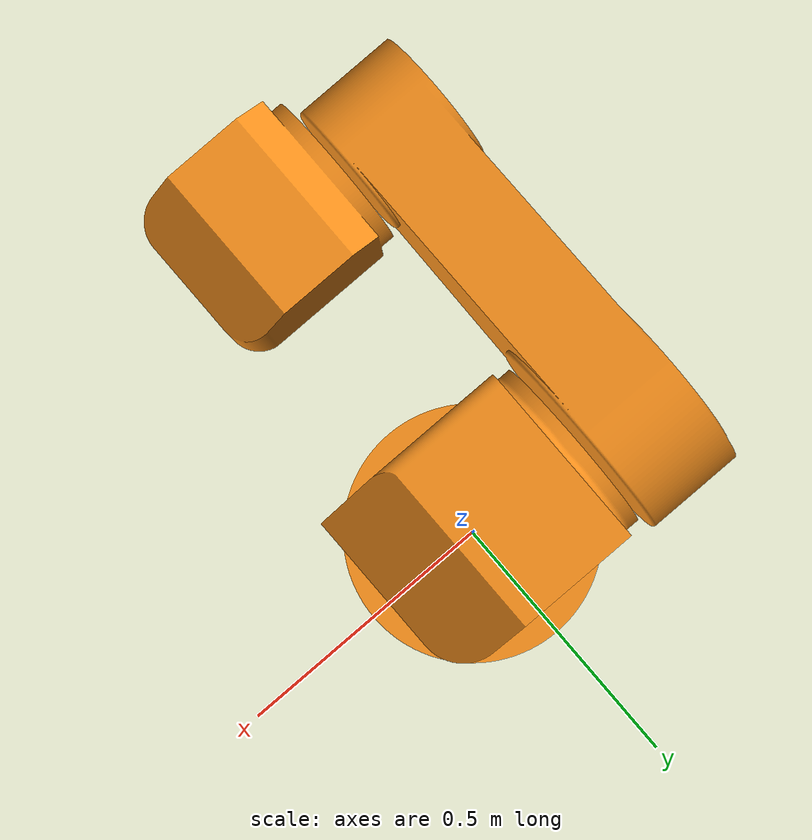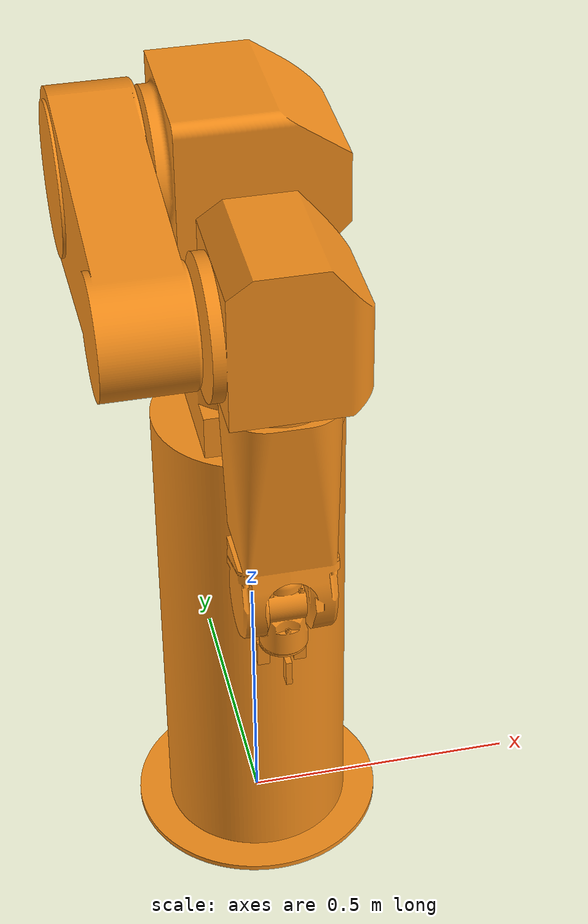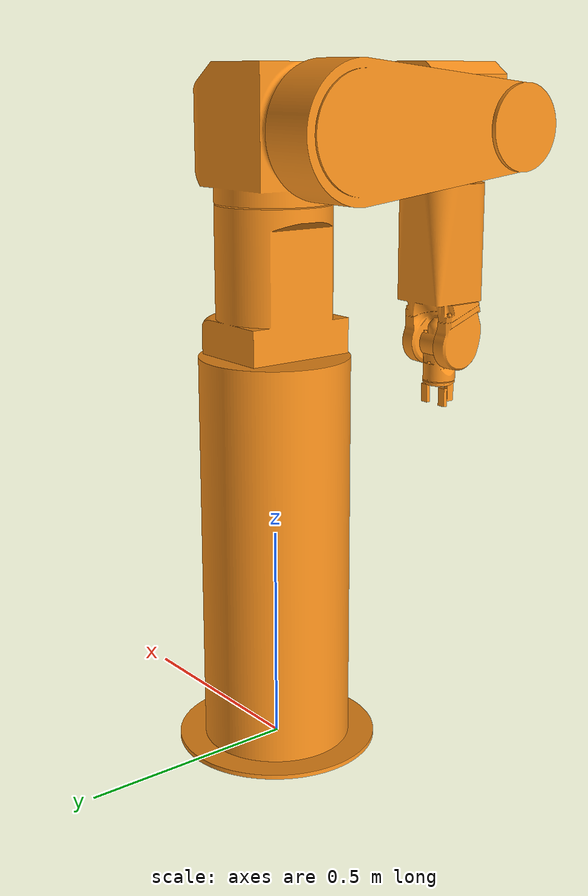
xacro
<?xml version="1.0"?>
<!-- Revolute-Revolute Manipulator -->
<robot name="rx90" xmlns:xacro="http://www.ros.org/wiki/xacro">

  <!-- Constants for robot dimensions -->

  <!-- Import all Gazebo-customization elements, including Gazebo colors -->
  <xacro:include filename="$(find rx90_description)/urdf/rx90.gazebo" />
  <!-- Import Rviz colors -->
  <xacro:include filename="$(find rx90_description)/urdf/materials.xacro" />

  <!-- Used for fixing robot to Gazebo 'base_link' -->
  <link name="world"/>

<!--BRAZOOOOOOOOOOOOOOOOOOOO-->

<!-- Joint 0 -->
   <link name="RX90_BARREL">
      <visual>
         <geometry>
            <mesh filename="package://rx90_description/meshes/stl/RX-90_BARREL.stl" scale="0.001 0.001 0.001" />
         </geometry>
          <origin rpy="${pi/2} 0 0" xyz= "0 0 0"/>
      </visual>
      <collision>
        <origin rpy="${pi/2} 0 0" xyz="0 0 0" />
            <geometry>
              <mesh filename="package://rx90_description/meshes/stl/RX-90_BARREL.stl" scale="0.001 0.001 0.001" />
            </geometry>
       </collision>
       <selfCollide>true</selfCollide>
	<inertial>
        <origin xyz="0 0 0" rpy="0 0 0" />
        <mass value="1" />
        <inertia
          ixx="1.0" ixy="0.0" ixz="0.0"
          iyy="1.0" iyz="0.0"
          izz="1.0" />
    </inertial>
   </link>
   <joint name="RX90_BARREL_JOINT" type="fixed">
      <parent link="world" />
      <child link="RX90_BARREL" />
      <origin rpy="0 0 0" xyz="0 0 0" />
   </joint>

    <link name="RX90_BASE">
       <visual>
	<origin rpy="${pi/2} 0 0" xyz="0 0 0" />
          <geometry>
             <mesh filename="package://rx90_description/meshes/stl/RX-90_BASE.stl" scale="0.001 0.001 0.001" />
          </geometry>
       </visual>
	<collision>
        <origin rpy="${pi/2} 0 0" xyz="0 0 0" />
            <geometry>
              <mesh filename="package://rx90_description/meshes/stl/RX-90_BASE.stl" scale="0.001 0.001 0.001" />
            </geometry>
       </collision>
       <selfCollide>true</selfCollide>
	<inertial>
        <mass value="23.085357"/>
          <origin xyz="0.007579 0.000017 0.180670" rpy="0.0 0.0 0.0"/>
          <inertia ixx="0.343576" ixy="-0.000062" ixz="-0.002079"
                                  iyy="0.336217"  iyz="-0.000014"
                                                  izz="0.334050"/>
    </inertial>
    </link>
    <joint name="RX90_BASE_JOINT" type="fixed">
       <parent link="RX90_BARREL" />
       <child link="RX90_BASE" />
       <origin rpy="0 0 0" xyz="0 0 1.005" />
    </joint>

    <link name="RX90_SHOULDER">
       <visual>
	<origin rpy="0 ${-pi/2} ${pi/2}" xyz="0.122 0 0" />
          <geometry>
             <mesh filename="package://rx90_description/meshes/stl/RX-90_SHOULDER.stl" scale="0.001 0.001 0.001" />
          </geometry>
       </visual>
	<collision>
        <origin rpy="0 ${-pi/2} ${pi/2}" xyz="0.122 0 0" />
            <geometry>
              <mesh filename="package://rx90_description/meshes/stl/RX-90_SHOULDER.stl" scale="0.001 0.001 0.001" />
            </geometry>
       </collision>
       <selfCollide>true</selfCollide>
	<inertial>
        <mass value="45.357763"/>
          <origin xyz="0.085479 -0.002547 -0.040488" rpy="0.0 0.0 0.0"/>
          <inertia ixx="0.839141" ixy="0.022637" ixz="0.162457"
                                  iyy="1.030146" iyz="0.027416"
                                                  izz="1.064698"/>
    </inertial>
    </link>
    <joint name="RX90_SHOULDER_JOINT" type="revolute">
    <limit effort="10000" lower="-2.7925" upper="2.7925" velocity="4.1189"/>
       <parent link="RX90_BASE" />
       <child link="RX90_SHOULDER" />
       <origin rpy="0 ${pi/2} 0" xyz="0 0 0.41" />
    </joint>

<link name="RX90_ARM">
       <visual>
	<origin rpy="0 0 ${pi/2}" xyz="0 0 0" />
          <geometry>
             <mesh filename="package://rx90_description/meshes/stl/RX-90_ARM.stl" scale="0.001 0.001 0.001" />
          </geometry>
       </visual>
	<collision>
        <origin rpy="0 0 ${pi/2}" xyz="0 0 0" />
            <geometry>
              <mesh filename="package://rx90_description/meshes/stl/RX-90_ARM.stl" scale="0.001 0.001 0.001" />
            </geometry>
       </collision>
       <selfCollide>true</selfCollide>
	<inertial>
        <mass value="51.266495"/>
          <origin xyz="-0.000002 0.264164 0.347704" rpy="0.0 0.0 0.0"/>
          <inertia ixx="5.272800" ixy="0.000010" ixz="0.000017"
                                  iyy="5.536809" iyz="-0.008261"
                                                  izz="0.486191"/>
    </inertial>
    </link>
    <joint name="RX90_ARM_JOINT" type="revolute">
    <limit effort="10000" lower="-0.82" upper="3.96" velocity="3.4906"/>
       <parent link="RX90_SHOULDER" />
       <child link="RX90_ARM" />
       <origin rpy="0 ${pi/2} ${pi/2}" xyz="0 0 -0.301" />
    </joint>

    <link name="RX90_ELBOW">
       <visual>
	<origin rpy="${-pi/2} ${-pi/2} ${-pi/2}" xyz="-0.021 0.14 0" />
          <geometry>
             <mesh filename="package://rx90_description/meshes/stl/RX-90_ELBOW.stl" scale="0.001 0.001 0.001" />
          </geometry>
       </visual>
	<collision>
        <origin rpy="${-pi/2} ${-pi/2} ${-pi/2}" xyz="-0.021 0.14 0" />
            <geometry>
              <mesh filename="package://rx90_description/meshes/stl/RX-90_ELBOW.stl" scale="0.001 0.001 0.001" />
            </geometry>
       </collision>
       <selfCollide>true</selfCollide>
	<inertial>
        <mass value="19.754401"/>
          <origin xyz="-0.000255 0.016478 -0.003819" rpy="0.0 0.0 0.0"/>
          <inertia ixx="0.249388" ixy="-0.004901" ixz="0.004825"
                                  iyy="0.211780"  iyz="0.000574"
                                                  izz="0.238488"/>
    </inertial>
    </link>
    <joint name="RX90_ELBOW_JOINT" type="revolute">
    <limit effort="10000" lower="-0.917" upper="4.057" velocity="4.9916"/>
       <parent link="RX90_ARM" />
       <child link="RX90_ELBOW" />
       <origin rpy="0 0 0" xyz="-0.255 0 -0.46" />
    </joint>

  <link name="RX90_FOREARM">
       <visual>
	<origin rpy="${pi} ${-pi/2} 0" xyz="0.355 0.1 -0.05" />
          <geometry>
             <mesh filename="package://rx90_description/meshes/stl/RX-90_FOREARM.stl" scale="0.001 0.001 0.001" />
          </geometry>
       </visual>
	<collision>
        <origin rpy="${pi} ${-pi/2} 0" xyz="0.355 0.1 -0.05" />
            <geometry>
              <mesh filename="package://rx90_description/meshes/stl/RX-90_FOREARM.stl" scale="0.001 0.001 0.001" />
            </geometry>
       </collision>
       <selfCollide>true</selfCollide>
	<inertial>
       <mass value="15.287896"/>
          <origin xyz="-0.015515 0.000164 0.340348" rpy="0.0 0.0 0.0"/>
          <inertia ixx="0.331593" ixy="0.000055" ixz="-0.010688"
                                  iyy="0.320895" iyz="0.000058"
                                                  izz="0.086557"/>
    </inertial>
    </link>
    <joint name="RX90_FOREARM_JOINT" type="revolute">
    <limit effort="10000" lower="-4.712" upper="4.712" velocity="6.9987"/>
       <parent link="RX90_ELBOW" />
       <child link="RX90_FOREARM" />
       <origin rpy="0 0 ${-pi/2}" xyz="0 0 0" />
    </joint>

      <link name="RX90_WRIST">
       <visual>
	<origin rpy="${pi/2} 0 ${-pi/2}" xyz="-0.007 0 -0.01" />
          <geometry>
             <mesh filename="package://rx90_description/meshes/stl/RX-90_WRIST.stl" scale="0.001 0.001 0.001" />
          </geometry>
       </visual>
	<collision>
        <origin rpy="${pi/2} 0 ${-pi/2}" xyz="-0.007 0 -0.01" />
            <geometry>
              <mesh filename="package://rx90_description/meshes/stl/RX-90_WRIST.stl" scale="0.001 0.001 0.001" />
            </geometry>
       </collision>
       <selfCollide>true</selfCollide>
	<inertial>
        <mass value="0.548088"/>
          <origin xyz="0.000000 -0.000347 0.023671" rpy="0.0 0.0 0.0"/>
          <inertia ixx="0.000876" ixy="0.000000" ixz="0.000000"
                                  iyy="0.000889" iyz="0.000005"
                                                  izz="0.000412"/>
    </inertial>
    </link>
    <joint name="RX90_WRIST_JOINT" type="revolute">
    <limit effort="10000" lower="-2" upper="1.8325" velocity="5.585"/>
       <parent link="RX90_FOREARM" />
       <child link="RX90_WRIST" />
       <origin rpy="0 0 ${pi/2}" xyz="0.52 0 0" />
    </joint>

          <link name="RX90_FLANGE">
       <visual>
	<origin rpy="0 ${pi/2} 0" xyz="0 0 0" />
          <geometry>
             <mesh filename="package://rx90_description/meshes/stl/RX-90_FLANGE.stl" scale="0.001 0.001 0.001" />
          </geometry>
       </visual>
	<collision>
        <origin rpy="0 ${pi/2} 0" xyz="0 0 -0.009" />
            <geometry>
              <mesh filename="package://rx90_description/meshes/stl/RX-90_FLANGE.stl" scale="0.001 0.001 0.001" />
            </geometry>
       </collision>
       <selfCollide>true</selfCollide>
	<inertial>
        <origin xyz="0 0 0" rpy="0 0 0" />
         <mass value="0.038484"/>
          <origin xyz="-0.000245 0.000000 -0.007626" rpy="0.0 0.0 0.0"/>
          <inertia ixx="0.000011" ixy="0.000000" ixz="0.000000"
                                  iyy="0.000011" iyz="0.000000"
                                                  izz="0.000021"/>
    </inertial>
    </link>
    <joint name="RX90_FLANGE_JOINT" type="revolute">
    <limit effort="10000" lower="-4.712" upper="4.712" velocity="10.122"/>
       <parent link="RX90_WRIST" />
       <child link="RX90_FLANGE" />
       <origin rpy="0 0 ${-pi/2}" xyz="-0.006 -0.1015 -0.009" />
    </joint>

          <link name="RX90_LGRIPPER">
       <visual>
	<origin rpy="0 0 0" xyz="0 0 0" />
          <geometry>
            <box size="0.02 0.045 0.01"/>
          </geometry>
       </visual>
	<collision>
        <origin rpy="0 0 0" xyz="0 0 0" />
            <geometry>
              <box size="0.02 0.045 0.01"/>
            </geometry>
       </collision>
       <selfCollide>true</selfCollide>
	<inertial>
        <origin xyz="0 0 0" rpy="0 0 0" />
         <mass value="0.018484"/>
          <inertia ixx="0.000011" ixy="0.000000" ixz="0.000000"
                                  iyy="0.000011" iyz="0.000000"
                                                  izz="0.000021"/>
    </inertial>
    </link>
    <joint name="RX90_LGRIPPER_JOINT" type="prismatic">
    <limit effort="1000.0" lower="0" upper="0.1" velocity="0.5"/>
       <parent link="RX90_FLANGE" />
       <child link="RX90_LGRIPPER" />
       <origin rpy="0 0 ${-pi/2}" xyz="0.025 0.03 0.015" />
    </joint>

 <link name="RX90_RGRIPPER">
       <visual>
	<origin rpy="0 0 0" xyz="0 0 0" />
          <geometry>
            <box size="0.02 0.045 0.01"/>
          </geometry>
       </visual>
	<collision>
        <origin rpy="0 0 0" xyz="0 0 0" />
            <geometry>
              <box size="0.02 0.045 0.01"/>
            </geometry>
       </collision>
       <selfCollide>true</selfCollide>
	<inertial>
        <origin xyz="0 0 0" rpy="0 0 0" />
         <mass value="0.018484"/>
          <inertia ixx="0.000011" ixy="0.000000" ixz="0.000000"
                                  iyy="0.000011" iyz="0.000000"
                                                  izz="0.000021"/>

    </inertial>
    </link>
    <joint name="RX90_RGRIPPER_JOINT" type="prismatic">
    <limit effort="1000.0" lower="-0.1" upper="0" velocity="0.5"/>
       <parent link="RX90_FLANGE" />
       <child link="RX90_RGRIPPER" />
       <origin rpy="0 0 ${-pi/2}" xyz="0.025 -0.03 0.015" />
    </joint>

     <link name="RX90_MGRIPPER">
       <visual>
	<origin rpy="0 0 0" xyz="0 0 0" />
          <geometry>
            <box size="0.02 0.045 0.01"/>
          </geometry>
       </visual>
	<collision>
        <origin rpy="0 0 0" xyz="0 0 0" />
            <geometry>
              <box size="0.02 0.045 0.01"/>
            </geometry>
       </collision>
       <selfCollide>true</selfCollide>
	<inertial>
        <origin xyz="0 0 0" rpy="0 0 0" />
         <mass value="0.018484"/>
          <inertia ixx="0.000011" ixy="0.000000" ixz="0.000000"
                                  iyy="0.000011" iyz="0.000000"
                                                  izz="0.000021"/>

    </inertial>
    </link>
    <joint name="RX90_MGRIPPER_JOINT" type="prismatic">
    <limit effort="1000.0" lower="-0.05" upper="0" velocity="0.5"/>
       <parent link="RX90_FLANGE" />
       <child link="RX90_MGRIPPER" />
       <origin rpy="0 ${pi/2} ${-pi/2}" xyz="0.025 0 -0.035" />
    </joint>

<!--BRAZOOOOOOOOOOOOOOOOOOOOooooooooooooooooooooooooooooooooooooooo-->

  <!-- Base Link -->

<!--TRANSMISION BRAZO-->

<transmission name="tran_RX90_SHOULDER_JOINT">
    <type>transmission_interface/SimpleTransmission</type>
    <joint name="RX90_SHOULDER_JOINT">
      <hardwareInterface>hardware_interface/EffortJointInterface</hardwareInterface>
    </joint>
    <actuator name="motor_RX90_SHOULDER_JOINT">
      <hardwareInterface>hardware_interface/EffortJointInterface</hardwareInterface>
      <mechanicalReduction>1</mechanicalReduction>
    </actuator>
  </transmission>

<transmission name="tran_RX90_ARM_JOINT">
    <type>transmission_interface/SimpleTransmission</type>
    <joint name="RX90_ARM_JOINT">
      <hardwareInterface>hardware_interface/EffortJointInterface</hardwareInterface>
    </joint>
    <actuator name="motor_RX90_ARM_JOINT">
      <hardwareInterface>hardware_interface/EffortJointInterface</hardwareInterface>
      <mechanicalReduction>1</mechanicalReduction>
    </actuator>
  </transmission>

  <transmission name="tran_RX90_ELBOW_JOINT">
    <type>transmission_interface/SimpleTransmission</type>
    <joint name="RX90_ELBOW_JOINT">
      <hardwareInterface>hardware_interface/EffortJointInterface</hardwareInterface>
    </joint>
    <actuator name="motor_RX90_ELBOW_JOINT">
      <hardwareInterface>hardware_interface/EffortJointInterface</hardwareInterface>
      <mechanicalReduction>1</mechanicalReduction>
    </actuator>
  </transmission>

  <transmission name="tran_RX90_FOREARM_JOINT">
    <type>transmission_interface/SimpleTransmission</type>
    <joint name="RX90_FOREARM_JOINT">
      <hardwareInterface>hardware_interface/EffortJointInterface</hardwareInterface>
    </joint>
    <actuator name="motor_RX90_FOREARM_JOINT">
      <hardwareInterface>hardware_interface/EffortJointInterface</hardwareInterface>
      <mechanicalReduction>1</mechanicalReduction>
    </actuator>
  </transmission>

  <transmission name="tran_RX90_WRIST_JOINT">
    <type>transmission_interface/SimpleTransmission</type>
    <joint name="RX90_WRIST_JOINT">
      <hardwareInterface>hardware_interface/EffortJointInterface</hardwareInterface>
    </joint>
    <actuator name="motor_RX90_WRIST_JOINT">
      <hardwareInterface>hardware_interface/EffortJointInterface</hardwareInterface>
      <mechanicalReduction>1</mechanicalReduction>
    </actuator>
  </transmission>

  <transmission name="tran_RX90_FLANGE_JOINT">
    <type>transmission_interface/SimpleTransmission</type>
    <joint name="RX90_FLANGE_JOINT">
      <hardwareInterface>hardware_interface/EffortJointInterface</hardwareInterface>
    </joint>
    <actuator name="motor_RX90_FLANGE_JOINT">
      <hardwareInterface>hardware_interface/EffortJointInterface</hardwareInterface>
      <mechanicalReduction>1</mechanicalReduction>
    </actuator>
  </transmission>

    <transmission name="tran_RX90_LGRIPPER_JOINT">
    <type>transmission_interface/SimpleTransmission</type>
    <joint name="RX90_LGRIPPER_JOINT">
      <hardwareInterface>hardware_interface/EffortJointInterface</hardwareInterface>
    </joint>
    <actuator name="motor_RX90_LGRIPPER_JOINT">
      <hardwareInterface>hardware_interface/EffortJointInterface</hardwareInterface>
      <mechanicalReduction>1</mechanicalReduction>
    </actuator>
  </transmission>

    <transmission name="tran_RX90_RGRIPPER_JOINT">
    <type>transmission_interface/SimpleTransmission</type>
    <joint name="RX90_RGRIPPER_JOINT">
      <hardwareInterface>hardware_interface/EffortJointInterface</hardwareInterface>
    </joint>
    <actuator name="motor_RX90_RGRIPPER_JOINT">
      <hardwareInterface>hardware_interface/EffortJointInterface</hardwareInterface>
      <mechanicalReduction>1</mechanicalReduction>
    </actuator>
  </transmission>

      <transmission name="tran_RX90_MGRIPPER_JOINT">
    <type>transmission_interface/SimpleTransmission</type>
    <joint name="RX90_MGRIPPER_JOINT">
      <hardwareInterface>hardware_interface/EffortJointInterface</hardwareInterface>
    </joint>
    <actuator name="motor_RX90_MGRIPPER_JOINT">
      <hardwareInterface>hardware_interface/EffortJointInterface</hardwareInterface>
      <mechanicalReduction>1</mechanicalReduction>
    </actuator>
  </transmission>

</robot>
